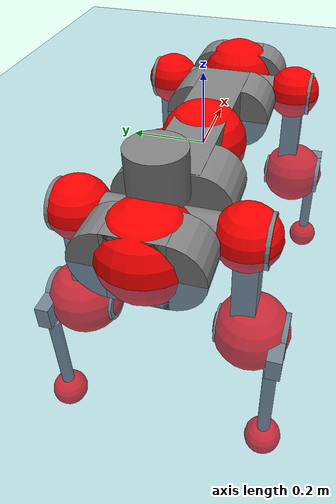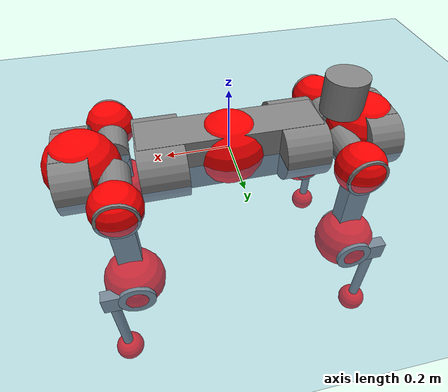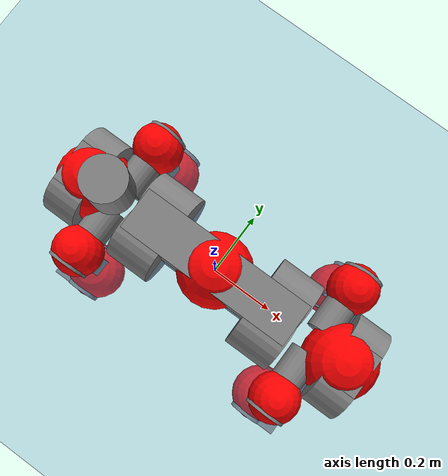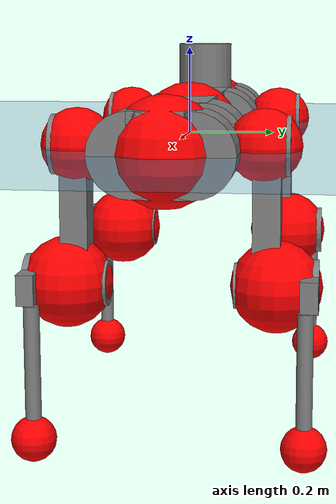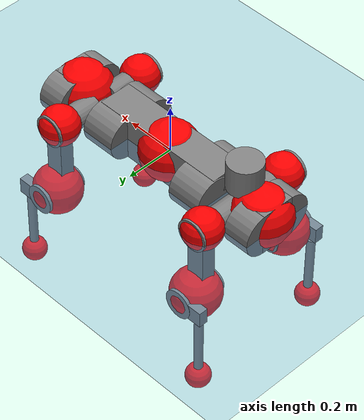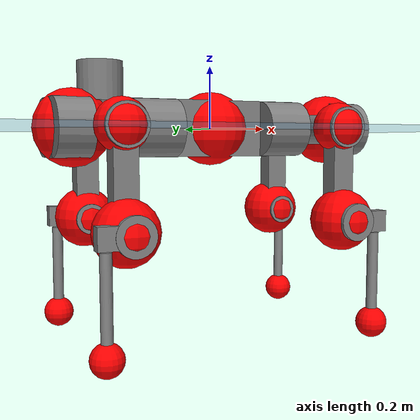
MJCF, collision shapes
<mujoco model="anymal_c">
  <compiler angle="radian" assetdir="assets" balanceinertia="true" inertiafromgeom="false"/>

  <option timestep="0.005" density="1.2" viscosity="2e-05"/>

  <size nkey="1"/>

  <visual>
    <quality shadowsize="8192"/>
    <map shadowclip="0.5"/>
  </visual>

  <default>
    <default class="/">
      <material specular="0" shininess="0.25"/>
      <geom contype="0" conaffinity="0" group="1" solref="-1000 -80"/>
      <site size="0.01 0.005 0.005" group="5"/>
      <general forcelimited="true" forcerange="-80 80" biastype="affine" gainprm="80" biasprm="0 -80 -2"/>
      <default class="anymal_c">
        <joint armature="0.01" damping="0.01" frictionloss="0.1"/>
        <default class="visual">
          <geom type="mesh" group="2"/>
          <default class="visual_zflip"/>
        </default>
        <default class="collision">
          <geom type="cylinder" group="3"/>
          <default class="foot">
            <geom size="0.03 0 0" type="sphere" condim="6" priority="1" friction="0.8 0.02 0.01" solimp="0.015 1 0.03"/>
          </default>
        </default>
      </default>
      <default class="reward_collision_sphere">
        <geom group="5" rgba="1 0 0 1"/>
      </default>
    </default>
  </default>

  <asset>
    <texture type="skybox" colorspace="auto" name="//unnamed_texture_0" builtin="gradient" rgb1="0.95 0.95 0.95" rgb2="0.95 0.95 0.95" width="100" height="600"/>
    <texture type="2d" colorspace="auto" name="texplane" builtin="checker" rgb1="0.345 0.575 0.748" rgb2="0.345 0.575 0.748" markrgb="1 1 1" width="512" height="512"/>
    <texture type="2d" colorspace="linear" name="base" file="base.png"/>
    <texture type="2d" colorspace="linear" name="top_shell" file="top_shell.png"/>
    <texture type="2d" colorspace="linear" name="bottom_shell" file="bottom_shell.png"/>
    <texture type="2d" colorspace="linear" name="remote" file="remote.png"/>
    <texture type="2d" colorspace="linear" name="hatch" file="hatch.png"/>
    <texture type="2d" colorspace="linear" name="handle" file="handle.png"/>
    <texture type="2d" colorspace="linear" name="face" file="face.png"/>
    <texture type="2d" colorspace="linear" name="battery" file="battery.png"/>
    <texture type="2d" colorspace="linear" name="lidar_cage" file="lidar_cage.png"/>
    <texture type="2d" colorspace="linear" name="depth_camera" file="depth_camera.png"/>
    <texture type="2d" colorspace="linear" name="wide_angle_camera" file="wide_angle_camera.png"/>
    <texture type="2d" colorspace="linear" name="lidar" file="lidar.png"/>
    <texture type="2d" colorspace="linear" name="drive" file="drive.png"/>
    <texture type="2d" colorspace="linear" name="hip_l" file="hip_l.png"/>
    <texture type="2d" colorspace="linear" name="shank_l" file="shank_l.png"/>
    <texture type="2d" colorspace="linear" name="foot" file="foot.png"/>
    <texture type="2d" colorspace="linear" name="thigh" file="thigh.png"/>
    <texture type="2d" colorspace="linear" name="shank_r" file="shank_r.png"/>
    <texture type="2d" colorspace="linear" name="hip_r" file="hip_r.png"/>
    <material name="MatPlane" class="/" texture="texplane" texuniform="true" texrepeat="2 2" specular="0.9" shininess="0.5"/>
    <material name="black_plastic" class="/" rgba="0.007 0.007 0.007 1"/>
    <material name="green" class="/" rgba="0.052 0.178 0.033 1"/>
    <material name="red" class="/" rgba="0.178 0.006 0.005 1"/>
    <material name="yellow" class="/" rgba="0.178 0.119 0.006 1"/>
    <material name="lwl" class="/" rgba="0.8 0.8 0.8 1"/>
    <material name="base" class="/" texture="base"/>
    <material name="top_shell" class="/" texture="top_shell"/>
    <material name="bottom_shell" class="/" texture="bottom_shell"/>
    <material name="hip_l" class="/" texture="hip_l"/>
    <material name="thigh" class="/" texture="thigh"/>
    <material name="shank_l" class="/" texture="shank_l"/>
    <material name="foot" class="/" texture="foot"/>
    <material name="hip_r" class="/" texture="hip_r"/>
    <material name="shank" class="/" texture="shank_r"/>
    <material name="hatch" class="/" texture="hatch"/>
    <material name="remote" class="/" texture="remote"/>
    <material name="handle" class="/" texture="handle"/>
    <material name="face" class="/" texture="face"/>
    <material name="depth_camera" class="/" texture="depth_camera"/>
    <material name="wide_angle_camera" class="/" texture="wide_angle_camera"/>
    <material name="battery" class="/" texture="battery"/>
    <material name="lidar_cage" class="/" texture="lidar_cage"/>
    <material name="lidar" class="/" texture="lidar"/>
    <material name="drive" class="/" texture="drive"/>
    <mesh name="base_0" class="/" file="base_0.obj"/>
    <mesh name="base_1" class="/" file="base_1.obj"/>
    <mesh name="base_2" class="/" file="base_2.obj"/>
    <mesh name="base_3" class="/" file="base_3.obj"/>
    <mesh name="base_4" class="/" file="base_4.obj"/>
    <mesh name="base_5" class="/" file="base_5.obj"/>
    <mesh name="top_shell" class="/" file="top_shell.obj"/>
    <mesh name="bottom_shell" class="/" file="bottom_shell.obj"/>
    <mesh name="remote" class="/" file="remote.obj"/>
    <mesh name="handle" class="/" file="handle.obj"/>
    <mesh name="face" class="/" file="face.obj"/>
    <mesh name="wide_angle_camera" class="/" file="wide_angle_camera.obj"/>
    <mesh name="depth_camera" class="/" file="depth_camera.obj"/>
    <mesh name="battery" class="/" file="battery.obj"/>
    <mesh name="lidar_cage" class="/" file="lidar_cage.obj"/>
    <mesh name="lidar" class="/" file="lidar.obj"/>
    <mesh name="drive" class="/" file="drive.obj"/>
    <mesh name="hip_l" class="/" file="hip_l.obj"/>
    <mesh name="thigh" class="/" file="thigh.obj"/>
    <mesh name="shank_l" class="/" file="shank_l.obj"/>
    <mesh name="foot" class="/" file="foot.obj"/>
    <mesh name="hip_r" class="/" file="hip_r.obj"/>
    <mesh name="hatch" class="/" file="hatch.obj"/>
    <mesh name="shank_r" class="/" file="shank_r.obj"/>
  </asset>

  <worldbody>
    <geom name="floor" class="/" size="100 100 0.125" type="plane" group="0" material="MatPlane"/>
    <light name="toplight_shadow" class="/" pos="0 0 5" dir="0.0990148 0.0990148 -0.990148" type="directional" ambient="0.04 0.04 0.04" diffuse="0.55 0.55 0.55" specular="0.12 0.12 0.12"/>
    <light name="toplight_fill" class="/" pos="0 0 5" dir="0.0990148 0.0990148 -0.990148" type="directional" castshadow="false" ambient="0.04 0.04 0.04" diffuse="0.3 0.3 0.3" specular="0.08 0.08 0.08"/>
    <body name="trunk" childclass="anymal_c" pos="0.000196949 0.000369171 0.000592732" quat="1 0.000101715 -5.14738e-05 0.000129036">
      <inertial pos="0.00311599 -0.00184922 0.051207" quat="0.497374 0.500376 0.499401 0.502833" mass="18.004" diaginertia="0.652323 0.357185 0.27532"/>
      <joint name="//unnamed_joint_0" type="free" armature="0" damping="0" frictionloss="0"/>
      <geom name="//unnamed_geom_1" class="visual" material="green" mesh="base_0"/>
      <geom name="//unnamed_geom_2" class="visual" material="yellow" mesh="base_1"/>
      <geom name="//unnamed_geom_3" class="visual" material="red" mesh="base_2"/>
      <geom name="//unnamed_geom_4" class="visual" material="black_plastic" mesh="base_3"/>
      <geom name="//unnamed_geom_5" class="visual" material="lwl" mesh="base_4"/>
      <geom name="//unnamed_geom_6" class="visual" material="base" mesh="base_5"/>
      <geom name="trunk_1" class="collision" size="0.286818 0.069232 0.0890126" type="box"/>
      <geom name="trunk_2" class="collision" size="0.0890126 0.0717046" pos="0.220453 0.0630544 0" quat="0.707107 0 0.707107 0"/>
      <geom name="trunk_3" class="collision" size="0.0890126 0.0717046" pos="-0.220453 0.0630544 0" quat="0.707107 0 0.707107 0"/>
      <geom name="trunk_4" class="collision" size="0.0890126 0.0717046" pos="0.220453 -0.0630544 0" quat="0.707107 0 0.707107 0"/>
      <geom name="trunk_5" class="collision" size="0.0890126 0.0717046" pos="-0.220453 -0.0630544 0" quat="0.707107 0 0.707107 0"/>
      <geom name="//unnamed_geom_12" class="visual" material="top_shell" mesh="top_shell"/>
      <geom name="//unnamed_geom_13" class="visual" material="bottom_shell" mesh="bottom_shell"/>
      <geom name="//unnamed_geom_14" class="visual" material="remote" mesh="remote"/>
      <geom name="//unnamed_geom_15" class="visual" material="handle" mesh="handle"/>
      <geom name="//unnamed_geom_16" class="visual" pos="0.420128 0 0" quat="1 0 0 0" material="face" mesh="face"/>
      <geom name="trunk_6" class="collision" size="0.0543966 0.069232 0.0890126" pos="0.475874 0 0" type="box"/>
      <geom name="//unnamed_geom_18" class="collision" size="0.0890126 0.0543966" pos="0.475874 0.0630544 0" quat="0.707107 0 0.707107 0"/>
      <geom name="//unnamed_geom_19" class="collision" size="0.0890126 0.0543966" pos="0.475874 -0.0630544 0" quat="0.707107 0 0.707107 0"/>
      <geom name="//unnamed_geom_20" class="visual" pos="0.467919 0 -0.0310374" quat="0.965926 0 0.258819 0" material="depth_camera" mesh="depth_camera"/>
      <geom name="//unnamed_geom_21" class="visual" pos="0.519965 0 0.0157594" material="wide_angle_camera" mesh="wide_angle_camera"/>
      <geom name="//unnamed_geom_22" class="visual_zflip" pos="-0.420128 0 0" quat="0 0 0 1" material="face" mesh="face"/>
      <geom name="trunk_7" class="collision" size="0.0543966 0.069232 0.0890126" pos="-0.475874 0 0" quat="0 0 0 1" type="box"/>
      <geom name="//unnamed_geom_24" class="collision" size="0.0890126 0.0543966" pos="-0.475874 -0.0630544 0" quat="0 -0.707107 0 0.707107"/>
      <geom name="//unnamed_geom_25" class="collision" size="0.0890126 0.0543966" pos="-0.475874 0.0630544 0" quat="0 -0.707107 0 0.707107"/>
      <geom name="//unnamed_geom_26" class="visual" pos="-0.467919 0 -0.0310374" quat="0 -0.258819 0 0.965926" material="depth_camera" mesh="depth_camera"/>
      <geom name="//unnamed_geom_27" class="visual_zflip" pos="-0.519965 0 0.0157594" quat="0 0 0 1" material="wide_angle_camera" mesh="wide_angle_camera"/>
      <geom name="//unnamed_geom_28" class="visual" material="battery" mesh="battery"/>
      <geom name="//unnamed_geom_29" class="visual" pos="0 0.0673948 0.0302843" quat="0.683013 -0.183013 0.183013 0.683013" material="depth_camera" mesh="depth_camera"/>
      <geom name="//unnamed_geom_30" class="visual" pos="0 -0.0673948 0.0302843" quat="0.683013 0.183013 0.183013 -0.683013" material="depth_camera" mesh="depth_camera"/>
      <geom name="//unnamed_geom_31" class="visual" pos="-0.368942 0 0.0773758" quat="1 0 0 0" material="lidar_cage" mesh="lidar_cage"/>
      <geom name="trunk_8" class="collision" size="0.069232 0.0593417" pos="-0.368942 0 0.14054"/>
      <geom name="//unnamed_geom_33" class="visual" pos="-0.368942 -4.43162e-05 0.149699" quat="0.707107 0 0 -0.707107" material="lidar" mesh="lidar"/>
      <geom name="//unnamed_geom_34" class="visual" pos="0.303972 0.0937347 -2.62126e-09" quat="0.258819 0.965926 0 0" material="drive" mesh="drive"/>
      <geom name="//unnamed_geom_35" class="visual" pos="0.303972 -0.0937347 2.62126e-09" quat="0.258819 -0.965926 0 0" material="drive" mesh="drive"/>
      <geom name="//unnamed_geom_36" class="visual" pos="-0.303972 0.0937347 2.62126e-09" quat="0 0 0.965926 -0.258819" material="drive" mesh="drive"/>
      <geom name="//unnamed_geom_37" class="visual" pos="-0.303972 -0.0937347 -2.62126e-09" quat="0 0 -0.965926 -0.258819" material="drive" mesh="drive"/>
      <geom name="//unnamed_geom_38" class="visual" pos="0.117575 0 0.0768495" quat="1 0 0 0" material="hatch" mesh="hatch"/>
      <geom name="//unnamed_geom_39" class="reward_collision_sphere" size="0.118683"/>
      <geom name="//unnamed_geom_40" class="reward_collision_sphere" size="0.118683" pos="0.45611 0 0"/>
      <geom name="//unnamed_geom_41" class="reward_collision_sphere" size="0.118683" pos="-0.45611 0 0"/>
      <site name="imu" pos="0.249959 0.00745616 0.0485946" size="0.00989029"/>
      <camera name="track" pos="0 -1.80155 0" quat="0.707107 0.707107 0 0" mode="trackcom"/>
      <camera name="ego_camera" pos="0.45611 0 -0.0421093" quat="-0.5 -0.5 0.5 0.5"/>
      <body name="LF_HIP" pos="0.305002 0.0939655 -0.000351384" quat="0.258848 0.965918 -6.29352e-05 8.64909e-05">
        <inertial pos="0.0575623 -0.0139221 -0.00843362" quat="-0.124188 0.706357 -0.143809 0.681877" mass="2.68471" diaginertia="0.00627104 0.00295889 0.00427139"/>
        <joint name="LF_HAA" pos="0 0 0" axis="0.999996 0.000795174 -0.00285252" range="-0.700622 0.483469" armature="0.00987913" damping="0.0097864" frictionloss="0.0986794"/>
        <geom name="//unnamed_geom_42" class="visual" pos="0 -0.000154197 2.53267e-05" quat="0.258819 -0.965926 0 0" material="hip_l" mesh="hip_l"/>
        <geom name="//unnamed_geom_43" class="visual" pos="0.0607133 -0.0721358 -0.0427716" quat="0.183013 -0.683013 0.683013 0.183013" material="drive" mesh="drive"/>
        <geom name="//unnamed_geom_44" class="collision" size="0.0494514 0.069232" pos="0.0607132 -0.0107731 -0.00726912" quat="-0.353553 -0.612372 0.612372 -0.353553"/>
        <body name="LF_THIGH" pos="0.0616653 -0.0667905 -0.0453557" quat="0.183699 -0.683048 0.682665 0.18349">
          <inertial pos="0.0315427 0.0019512 -0.259032" quat="0.992855 -0.00204355 -0.0841618 0.084565" mass="2.93988" diaginertia="0.0319837 0.0181121 0.00541739"/>
          <joint name="LF_HFE" pos="0 0 0" axis="1 0.000297493 -0.000408558" range="-3.13988 3.11075" armature="0.0107863" damping="0.0120684" frictionloss="0.103042"/>
          <geom name="//unnamed_geom_45" class="visual" pos="0.00224428 3.53646e-06 0" quat="0.707107 0 0 -0.707107" material="thigh" mesh="thigh"/>
          <geom name="//unnamed_geom_46" class="collision" size="0.0642869 0.0395611" pos="0.0405431 0 0" quat="0.5 0.5 -0.5 -0.5"/>
          <geom name="//unnamed_geom_47" class="collision" size="0.0370886 0.0296709 0.139764" pos="0.0304073 0 -0.148766" quat="0.707107 0 0 -0.707107" type="box"/>
          <geom name="//unnamed_geom_48" class="visual" pos="0.101662 0 -0.300029" quat="1 0 0 0" material="drive" mesh="drive"/>
          <geom name="//unnamed_geom_49" class="collision" size="0.0494514 0.069232" pos="0.0307114 0 -0.300029" quat="0.707107 0 0.707107 0"/>
          <geom name="//unnamed_geom_50" class="reward_collision_sphere" size="0.0791223" pos="0.0253394 0 0"/>
          <body name="LF_SHANK" pos="0.102044 -8.22319e-05 -0.300522" quat="1 0.00028113 -1.77315e-05 7.91069e-06">
            <inertial pos="0.00447761 -0.0545567 -0.0854355" quat="0.992776 -0.116825 0.00255494 -0.0272159" mass="0.56772" diaginertia="0.0109421 0.00560803 0.00144904"/>
            <joint name="LF_KFE" pos="0 0 0" axis="1 0.000213205 0.000644583" range="-3.10331 3.14592" armature="0.0103486" damping="0.000960802" frictionloss="0.0954851"/>
            <geom name="//unnamed_geom_51" class="visual" pos="0.000731811 0.00390206 0" quat="0.707107 0 0 -0.707107" material="shank_l" mesh="shank_l"/>
            <geom name="LF_kfe_act" class="collision" size="0.0593417 0.0197806" pos="0.0202715 0 0" quat="0.5 0.5 -0.5 -0.5"/>
            <geom name="//unnamed_geom_53" class="collision" size="0.0568682 0.0333797 0.0187915" pos="0.0202715 -0.0517937 0" quat="0.5 0.5 -0.5 -0.5" type="box"/>
            <geom name="//unnamed_geom_54" class="visual" pos="0.013227 -0.0779658 -0.355792" quat="0.382683 0 0 -0.92388" material="foot" mesh="foot"/>
            <geom name="LF_calf" class="collision" size="0.017308 0.139702" pos="0.0132272 -0.0792233 -0.177896" quat="0.707107 0 0 -0.707107"/>
            <geom name="LF_foot" class="foot" size="0.0303142" pos="0.0132272 -0.0792233 -0.332106" quat="0.707107 0 0 -0.707107"/>
            <geom name="//unnamed_geom_57" class="reward_collision_sphere" size="0.0989029" pos="-0.0506788 0 0"/>
            <geom name="//unnamed_geom_58" class="reward_collision_sphere" size="0.0494514" pos="0.0132272 -0.0792233 -0.332106"/>
            <site name="LF_foot" class="foot" pos="0.0132272 -0.0792233 -0.332106" quat="0.707107 0 0 -0.707107" size="0.00989029"/>
          </body>
        </body>
      </body>
      <body name="RF_HIP" pos="0.302831 -0.0929829 -0.00203277" quat="0.259057 -0.965862 0.000243173 -0.00011797">
        <inertial pos="0.0570305 0.0131281 -0.00792329" quat="0.137561 0.674983 0.128762 0.713369" mass="2.71161" diaginertia="0.00625945 0.00291964 0.00419908"/>
        <joint name="RF_HAA" pos="0 0 0" axis="0.999997 0.000769988 -0.00213824" range="-0.487084 0.74068" armature="0.0104394" damping="0.0128961" frictionloss="0.0967869"/>
        <geom name="//unnamed_geom_59" class="visual" pos="0 0.000154196 2.53266e-05" quat="0.258819 0.965926 0 0" material="hip_r" mesh="hip_r"/>
        <geom name="//unnamed_geom_60" class="visual" pos="0.0607132 0.0721358 -0.0427716" quat="0.183013 0.683013 0.683013 -0.183013" material="drive" mesh="drive"/>
        <geom name="//unnamed_geom_61" class="collision" size="0.0494514 0.069232" pos="0.0607132 0.0107731 -0.00726912" quat="-0.353553 0.612372 0.612372 0.353553"/>
        <body name="RF_THIGH" pos="0.0619178 0.0669633 -0.0461146" quat="0.18306 0.68298 0.683039 -0.182989">
          <inertial pos="0.0304005 0.000380694 -0.256944" quat="0.992926 -0.00159039 -0.0787296 0.0888617" mass="2.95842" diaginertia="0.0325653 0.0177619 0.0054194"/>
          <joint name="RF_HFE" pos="0 0 0" axis="0.999982 -0.00506993 0.0033203" stiffness="0.0120507" range="-3.13587 3.12281" armature="0.00939425" damping="0.0142613" frictionloss="0.10186"/>
          <geom name="//unnamed_geom_62" class="visual" pos="0.00224428 3.53646e-06 0" quat="0.707107 0 0 -0.707107" material="thigh" mesh="thigh"/>
          <geom name="//unnamed_geom_63" class="collision" size="0.0642869 0.0395611" pos="0.0405431 0 0" quat="0.5 0.5 0.5 0.5"/>
          <geom name="//unnamed_geom_64" class="collision" size="0.0370886 0.0296709 0.139764" pos="0.0304073 0 -0.148766" quat="0.707107 0 0 0.707107" type="box"/>
          <geom name="//unnamed_geom_65" class="visual" pos="0.101662 0 -0.300029" quat="1 0 0 0" material="drive" mesh="drive"/>
          <geom name="//unnamed_geom_66" class="collision" size="0.0494514 0.069232" pos="0.0307114 0 -0.300029" quat="0.707107 0 0.707107 0"/>
          <geom name="//unnamed_geom_67" class="reward_collision_sphere" size="0.0791223" pos="0.0253394 0 0"/>
          <body name="RF_SHANK" pos="0.102449 -0.000779847 -0.298365" quat="1 -1.85997e-05 1.34861e-05 7.47536e-05">
            <inertial pos="0.00640149 0.0548204 -0.0849538" quat="0.993438 0.11123 -0.00152609 0.0265721" mass="0.581669" diaginertia="0.0112456 0.00559117 0.0014921"/>
            <joint name="RF_KFE" pos="0 0 0" axis="0.999997 0.00238813 -0.00102665" range="-3.15543 3.13073" armature="0.00965899" damping="0" frictionloss="0.103146"/>
            <geom name="//unnamed_geom_68" class="visual" pos="0.000731807 -0.00390205 0" quat="0.707107 0 0 0.707107" material="shank" mesh="shank_r"/>
            <geom name="RF_kfe_act" class="collision" size="0.0593417 0.0197806" pos="0.0202715 0 0" quat="0.5 0.5 0.5 0.5"/>
            <geom name="//unnamed_geom_70" class="collision" size="0.0568682 0.0333797 0.0187915" pos="0.0202715 0.0517937 0" quat="0.5 0.5 0.5 0.5" type="box"/>
            <geom name="//unnamed_geom_71" class="visual" pos="0.0132274 0.0779658 -0.355792" quat="0.382683 0 0 0.92388" material="foot" mesh="foot"/>
            <geom name="RF_calf" class="collision" size="0.017308 0.139702" pos="0.0132272 0.0792233 -0.177896" quat="0.707107 0 0 0.707107"/>
            <geom name="RF_foot" class="foot" size="0.0268282" pos="0.0132272 0.0792233 -0.332106" quat="0.707107 0 0 0.707107"/>
            <geom name="//unnamed_geom_74" class="reward_collision_sphere" size="0.0989029" pos="-0.0506788 0 0"/>
            <geom name="//unnamed_geom_75" class="reward_collision_sphere" size="0.0494514" pos="0.0132272 0.0792233 -0.332106"/>
            <site name="RF_foot" class="foot" pos="0.0132272 0.0792233 -0.332106" quat="0.707107 0 0 0.707107" size="0.00989029"/>
          </body>
        </body>
      </body>
      <body name="LH_HIP" pos="-0.30345 0.093023 0.000273547" quat="-4.74461e-05 -2.88933e-05 0.965968 -0.258662">
        <inertial pos="0.0577986 0.0136418 -0.00943342" quat="0.135282 0.679165 0.128103 0.709946" mass="2.65616" diaginertia="0.00631986 0.00298671 0.00426067"/>
        <joint name="LH_HAA" pos="0 0 0" axis="0.999985 -0.00273518 -0.00481163" range="-0.481249 0.737418" armature="0.00987469" damping="0.0109739" frictionloss="0.100027"/>
        <geom name="//unnamed_geom_76" class="visual" pos="0 0.000154196 2.53266e-05" quat="-0.258819 -0.965926 0 0" material="hip_r" mesh="hip_r"/>
        <geom name="//unnamed_geom_77" class="visual" pos="0.0607132 0.0721358 -0.0427716" quat="0.183013 0.683013 0.683013 -0.183013" material="drive" mesh="drive"/>
        <geom name="//unnamed_geom_78" class="collision" size="0.0494514 0.069232" pos="0.0607132 0.0107731 -0.00726912" quat="-0.353553 0.612372 0.612372 0.353553"/>
        <body name="LH_THIGH" pos="0.0601793 0.0666541 -0.0445147" quat="0.182591 0.683609 0.682468 -0.18324">
          <inertial pos="0.0310422 0.00191908 -0.259298" quat="0.992845 -0.00436798 -0.0802155 0.0883476" mass="2.90682" diaginertia="0.03269 0.017545 0.00547711"/>
          <joint name="LH_HFE" pos="0 0 0" axis="0.999959 0.00714947 0.0056144" range="-3.15296 3.14345" armature="0.00966793" damping="0.0094139" frictionloss="0.102946"/>
          <geom name="//unnamed_geom_79" class="visual" pos="0.00224428 3.53646e-06 0" quat="0.707107 0 0 -0.707107" material="thigh" mesh="thigh"/>
          <geom name="//unnamed_geom_80" class="collision" size="0.0642869 0.0395611" pos="0.0405431 0 0" quat="0.5 0.5 -0.5 -0.5"/>
          <geom name="//unnamed_geom_81" class="collision" size="0.0370886 0.0296709 0.139764" pos="0.0304073 0 -0.148766" quat="0.707107 0 0 -0.707107" type="box"/>
          <geom name="//unnamed_geom_82" class="visual" pos="0.101662 0 -0.300029" quat="1 0 0 0" material="drive" mesh="drive"/>
          <geom name="//unnamed_geom_83" class="collision" size="0.0494514 0.069232" pos="0.0307114 0 -0.300029" quat="0.707107 0 0.707107 0"/>
          <geom name="//unnamed_geom_84" class="reward_collision_sphere" size="0.0791223" pos="0.0253394 0 0"/>
          <body name="LH_SHANK" pos="0.102559 -0.00162754 -0.300965" quat="1 0.000535111 -0.000108867 -0.000272725">
            <inertial pos="0.00570252 0.0555808 -0.0853043" quat="0.992947 0.115774 -0.000579598 0.0255371" mass="0.576478" diaginertia="0.0109481 0.00550915 0.00145029"/>
            <joint name="LH_KFE" pos="0 0 0" axis="1 0.000293579 0.000797925" range="-3.1114 3.14492" armature="0.0108159" damping="0.00841675" frictionloss="0.101373"/>
            <geom name="//unnamed_geom_85" class="visual" pos="0.000731807 -0.00390205 0" quat="-0.707107 0 0 -0.707107" material="shank" mesh="shank_r"/>
            <geom name="LH_kfe_act" class="collision" size="0.0593417 0.0197806" pos="0.0202715 0 0" quat="0.5 0.5 -0.5 -0.5"/>
            <geom name="//unnamed_geom_87" class="collision" size="0.0568682 0.0333797 0.0187915" pos="0.0202715 0.0517937 0" quat="0.5 0.5 -0.5 -0.5" type="box"/>
            <geom name="//unnamed_geom_88" class="visual" pos="0.0132274 0.0779658 -0.355792" quat="-0.382683 0 0 -0.92388" material="foot" mesh="foot"/>
            <geom name="LH_calf" class="collision" size="0.017308 0.139702" pos="0.0132272 0.0792233 -0.177896" quat="0.707107 0 0 -0.707107"/>
            <geom name="LH_foot" class="foot" size="0.0310312" pos="0.0132272 0.0792233 -0.332106" quat="0.707107 0 0 -0.707107"/>
            <geom name="//unnamed_geom_91" class="reward_collision_sphere" size="0.0989029" pos="-0.0506788 0 0"/>
            <geom name="//unnamed_geom_92" class="reward_collision_sphere" size="0.0494514" pos="0.0132272 0.0792233 -0.332106"/>
            <site name="LH_foot" class="foot" pos="0.0132272 0.0792233 -0.332106" quat="0.707107 0 0 -0.707107" size="0.00989029"/>
          </body>
        </body>
      </body>
      <body name="RH_HIP" pos="-0.305678 -0.0941636 -0.000219435" quat="-0.000717709 -0.000107226 -0.965703 -0.259647">
        <inertial pos="0.0574008 -0.0133363 -0.00943332" quat="-0.128018 0.709764 -0.135298 0.679368" mass="2.72408" diaginertia="0.00633633 0.0029298 0.00441392"/>
        <joint name="RH_HAA" pos="0 0 0" axis="0.999996 0.000845309 -0.002575" range="-0.725371 0.4883" armature="0.010514" damping="0.00966596" frictionloss="0.0958239"/>
        <geom name="//unnamed_geom_93" class="visual" pos="0 -0.000154197 2.53267e-05" quat="-0.258819 0.965926 0 0" material="hip_l" mesh="hip_l"/>
        <geom name="//unnamed_geom_94" class="visual" pos="0.0607133 -0.0721358 -0.0427716" quat="-0.183013 0.683013 -0.683013 -0.183013" material="drive" mesh="drive"/>
        <geom name="//unnamed_geom_95" class="collision" size="0.0494514 0.069232" pos="0.0607132 -0.0107731 -0.00726912" quat="0.353553 0.612372 -0.612372 0.353553"/>
        <body name="RH_THIGH" pos="0.0609313 -0.0654515 -0.0442933" quat="-0.183354 0.68306 -0.682784 -0.183347">
          <inertial pos="0.0316049 -0.000206746 -0.258527" quat="0.993011 -0.00615986 -0.0828623 0.0838207" mass="2.94929" diaginertia="0.0321441 0.0178195 0.00543684"/>
          <joint name="RH_HFE" pos="0 0 0" axis="0.999998 -9.50857e-05 -0.00210068" range="-3.13766 3.18234" armature="0.00903713" damping="0.0110705" frictionloss="0.0980994"/>
          <geom name="//unnamed_geom_96" class="visual" pos="0.00224428 3.53646e-06 0" quat="0.707107 0 0 -0.707107" material="thigh" mesh="thigh"/>
          <geom name="//unnamed_geom_97" class="collision" size="0.0642869 0.0395611" pos="0.0405431 0 0" quat="0.5 0.5 0.5 0.5"/>
          <geom name="//unnamed_geom_98" class="collision" size="0.0370886 0.0296709 0.139764" pos="0.0304073 0 -0.148766" quat="0.707107 0 0 0.707107" type="box"/>
          <geom name="//unnamed_geom_99" class="visual" pos="0.101662 0 -0.300029" quat="1 0 0 0" material="drive" mesh="drive"/>
          <geom name="//unnamed_geom_100" class="collision" size="0.0494514 0.069232" pos="0.0307114 0 -0.300029" quat="0.707107 0 0.707107 0"/>
          <geom name="//unnamed_geom_101" class="reward_collision_sphere" size="0.0791223" pos="0.0253394 0 0"/>
          <body name="RH_SHANK" pos="0.100717 0.00075959 -0.300357" quat="1 -1.62251e-05 7.77359e-05 -1.55265e-05">
            <inertial pos="0.00644649 -0.0546866 -0.0851882" quat="0.993011 -0.115246 -0.00120719 -0.0254143" mass="0.565437" diaginertia="0.0107904 0.00540168 0.00143681"/>
            <joint name="RH_KFE" pos="0 0 0" axis="0.99999 0.000415052 -0.00447196" stiffness="0.000197404" range="-3.09962 3.11664" armature="0.00954916" damping="0.00754761" frictionloss="0.0947209"/>
            <geom name="//unnamed_geom_102" class="visual" pos="0.000731811 0.00390206 0" quat="0.707107 0 0 -0.707107" material="shank_l" mesh="shank_l"/>
            <geom name="RH_kfe_act" class="collision" size="0.0593417 0.0197806" pos="0.0202715 0 0" quat="0.5 0.5 0.5 0.5"/>
            <geom name="//unnamed_geom_104" class="collision" size="0.0568682 0.0333797 0.0187915" pos="0.0202715 -0.0517937 0" quat="0.5 0.5 0.5 0.5" type="box"/>
            <geom name="//unnamed_geom_105" class="visual" pos="0.013227 -0.0779658 -0.355792" quat="0.382683 0 0 -0.92388" material="foot" mesh="foot"/>
            <geom name="RH_calf" class="collision" size="0.017308 0.139702" pos="0.0132272 -0.0792233 -0.177896" quat="0.707107 0 0 0.707107"/>
            <geom name="RH_foot" class="foot" size="0.0291591" pos="0.0132272 -0.0792233 -0.332106" quat="0.707107 0 0 0.707107"/>
            <geom name="//unnamed_geom_108" class="reward_collision_sphere" size="0.0989029" pos="-0.0506788 0 0"/>
            <geom name="//unnamed_geom_109" class="reward_collision_sphere" size="0.0494514" pos="0.0132272 -0.0792233 -0.332106"/>
            <site name="RH_foot" class="foot" pos="0.0132272 -0.0792233 -0.332106" quat="0.707107 0 0 0.707107" size="0.00989029"/>
          </body>
        </body>
      </body>
    </body>
  </worldbody>

  <contact>
    <pair class="/" geom1="floor" geom2="LF_foot" name="//unnamed_contact_0"/>
    <pair class="/" geom1="floor" geom2="RF_foot" name="//unnamed_contact_1"/>
    <pair class="/" geom1="floor" geom2="LH_foot" name="//unnamed_contact_2"/>
    <pair class="/" geom1="floor" geom2="RH_foot" name="//unnamed_contact_3"/>
  </contact>

  <actuator>
    <general name="LF_HAA" class="/" joint="LF_HAA" forcerange="-77.1231 77.1231" gainprm="80.1816" biasprm="0 -80.1816 -1.87513"/>
    <general name="LF_HFE" class="/" joint="LF_HFE" forcerange="-79.229 79.229" gainprm="80.1816" biasprm="0 -80.1816 -1.87513"/>
    <general name="LF_KFE" class="/" joint="LF_KFE" forcerange="-80.5653 80.5653" gainprm="80.1816" biasprm="0 -80.1816 -1.87513"/>
    <general name="RF_HAA" class="/" joint="RF_HAA" forcerange="-82.7853 82.7853" gainprm="80.1816" biasprm="0 -80.1816 -1.87513"/>
    <general name="RF_HFE" class="/" joint="RF_HFE" forcerange="-79.6756 79.6756" gainprm="80.1816" biasprm="0 -80.1816 -1.87513"/>
    <general name="RF_KFE" class="/" joint="RF_KFE" forcerange="-79.3318 79.3318" gainprm="80.1816" biasprm="0 -80.1816 -1.87513"/>
    <general name="LH_HAA" class="/" joint="LH_HAA" forcerange="-80.5917 80.5917" gainprm="80.1816" biasprm="0 -80.1816 -1.87513"/>
    <general name="LH_HFE" class="/" joint="LH_HFE" forcerange="-79.4638 79.4638" gainprm="80.1816" biasprm="0 -80.1816 -1.87513"/>
    <general name="LH_KFE" class="/" joint="LH_KFE" forcerange="-77.3645 77.3645" gainprm="80.1816" biasprm="0 -80.1816 -1.87513"/>
    <general name="RH_HAA" class="/" joint="RH_HAA" forcerange="-82.4589 82.4589" gainprm="80.1816" biasprm="0 -80.1816 -1.87513"/>
    <general name="RH_HFE" class="/" joint="RH_HFE" forcerange="-76.739 76.739" gainprm="80.1816" biasprm="0 -80.1816 -1.87513"/>
    <general name="RH_KFE" class="/" joint="RH_KFE" forcerange="-82.712 82.712" gainprm="80.1816" biasprm="0 -80.1816 -1.87513"/>
  </actuator>

  <sensor>
    <gyro site="imu" name="imu_angular_velocity"/>
    <velocimeter site="imu" name="imu_linear_velocity"/>
    <framelinvel objtype="site" objname="LF_foot" name="LF_foot_global_linear_velocity"/>
    <framelinvel objtype="site" objname="RF_foot" name="RF_foot_global_linear_velocity"/>
    <framelinvel objtype="site" objname="LH_foot" name="LH_foot_global_linear_velocity"/>
    <framelinvel objtype="site" objname="RH_foot" name="RH_foot_global_linear_velocity"/>
  </sensor>

  <keyframe>
    <key name="home" qpos="0 0 0.55 1 0 0 0 0 0.4 -0.8 0 -0.4 0.8 0 -0.4 0.8 0 0.4 -0.8"/>
  </keyframe>
</mujoco>
